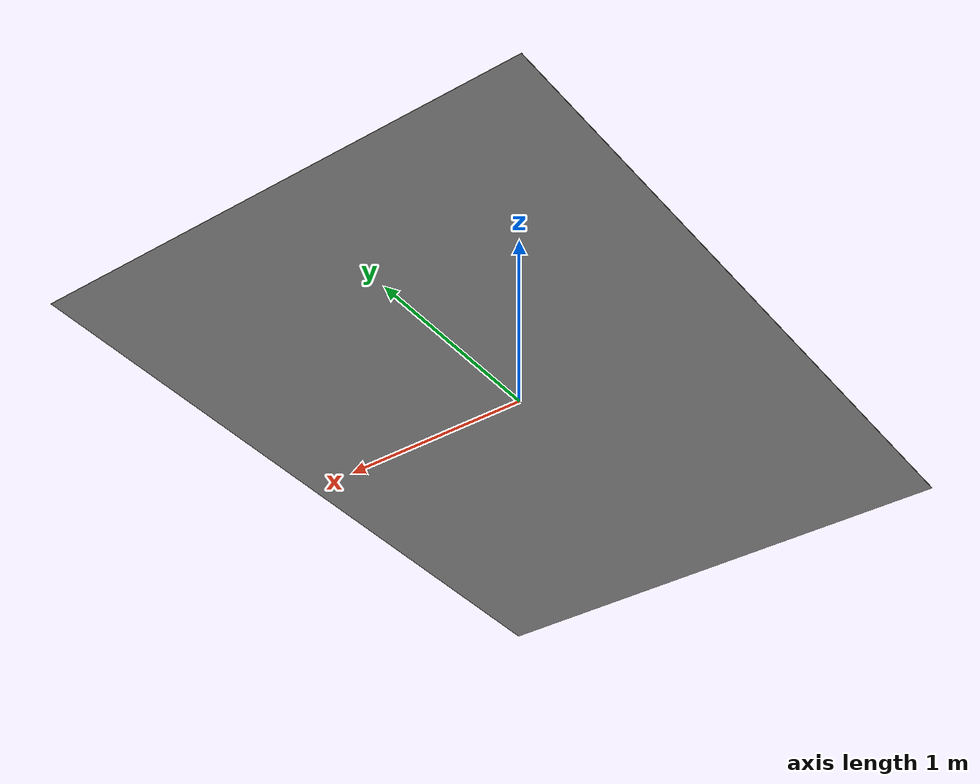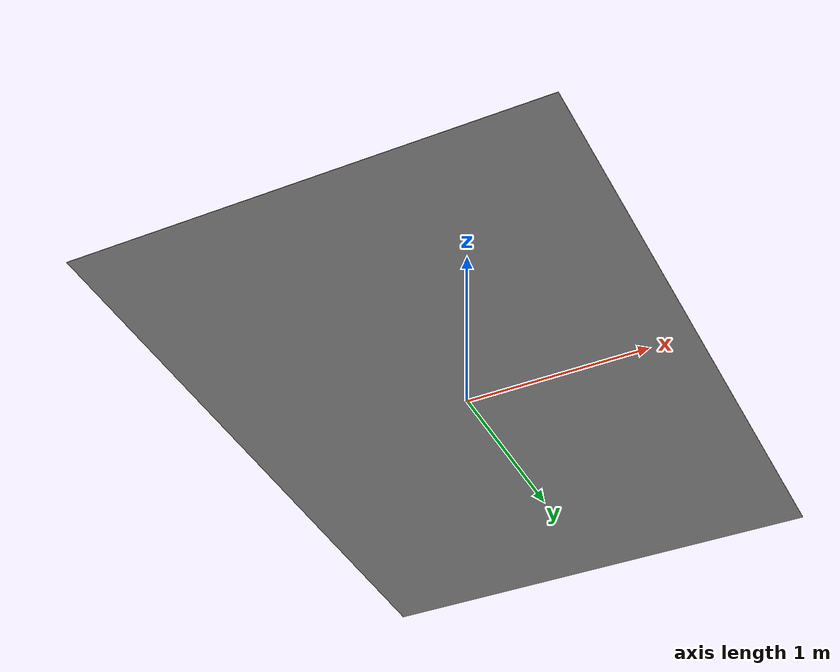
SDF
<?xml version="1.0"?>
<sdf version="1.4">
<model name="my_ground_plane">
  <static>true</static>
    <link name="link">
      <pose frame=''>0 0 0.001 0 0 0</pose>

      <visual name="visual">
        <cast_shadows>false</cast_shadows>
        <geometry>
          <plane>
            <normal>0 0 1</normal>
            <size>2.5 3.5</size>
          </plane>
        </geometry>
        <material>
          <script>
            <uri>model://my_other_ground_plane/materials/scripts/my_other_ground_plane.material</uri>
            <uri>model://my_other_ground_plane/materials/textures</uri>
            <name>MyGroundPlane/Image</name>
          </script>
        </material>
      </visual>
    </link>
  </model>
</sdf>
